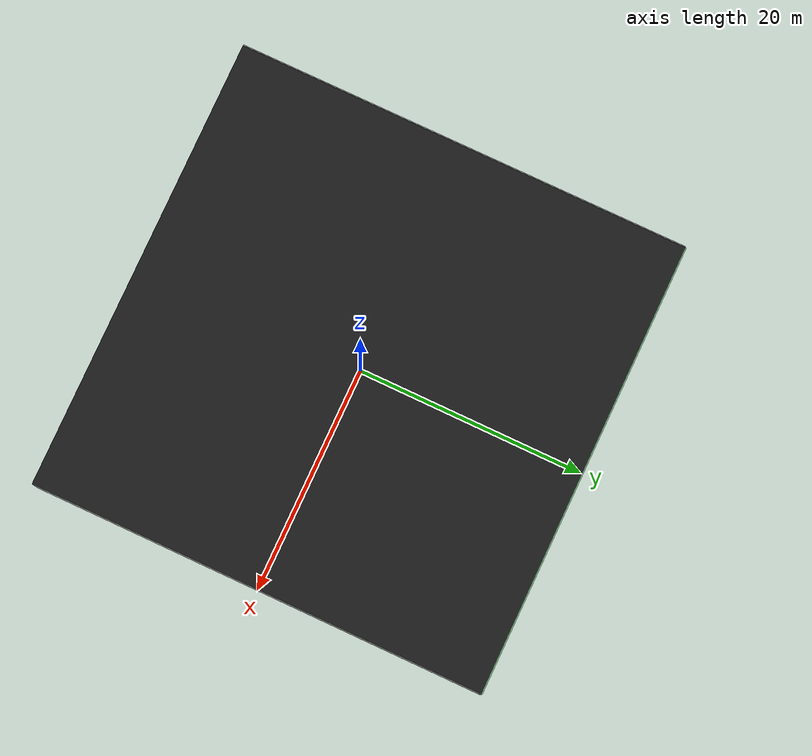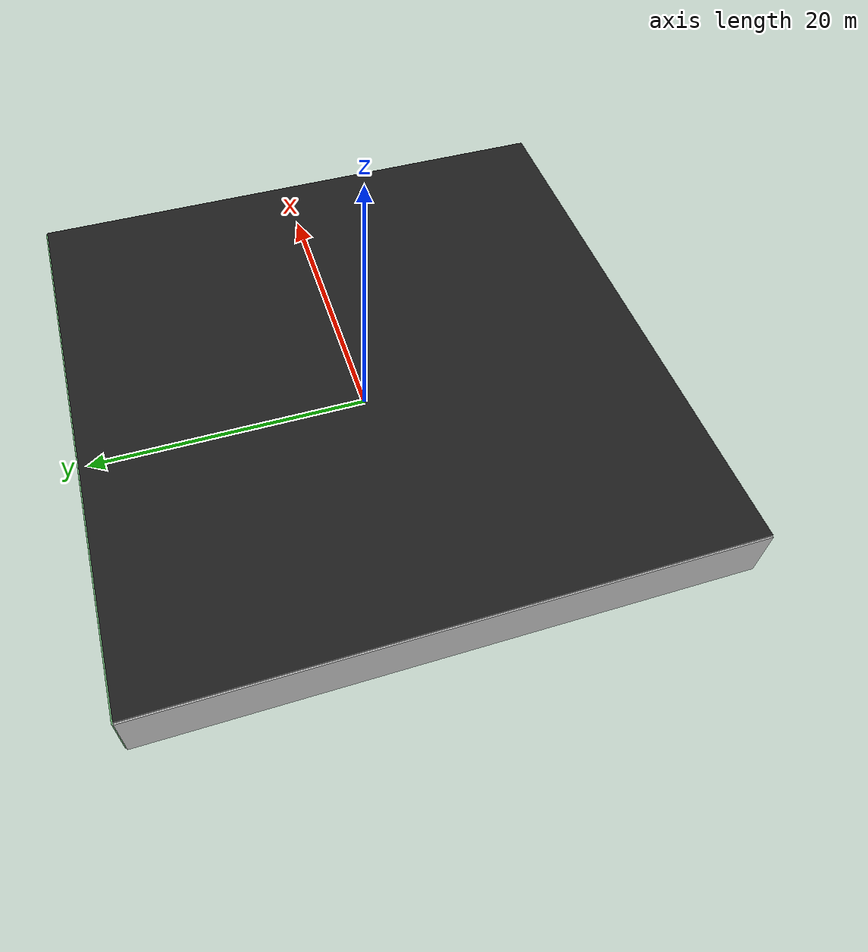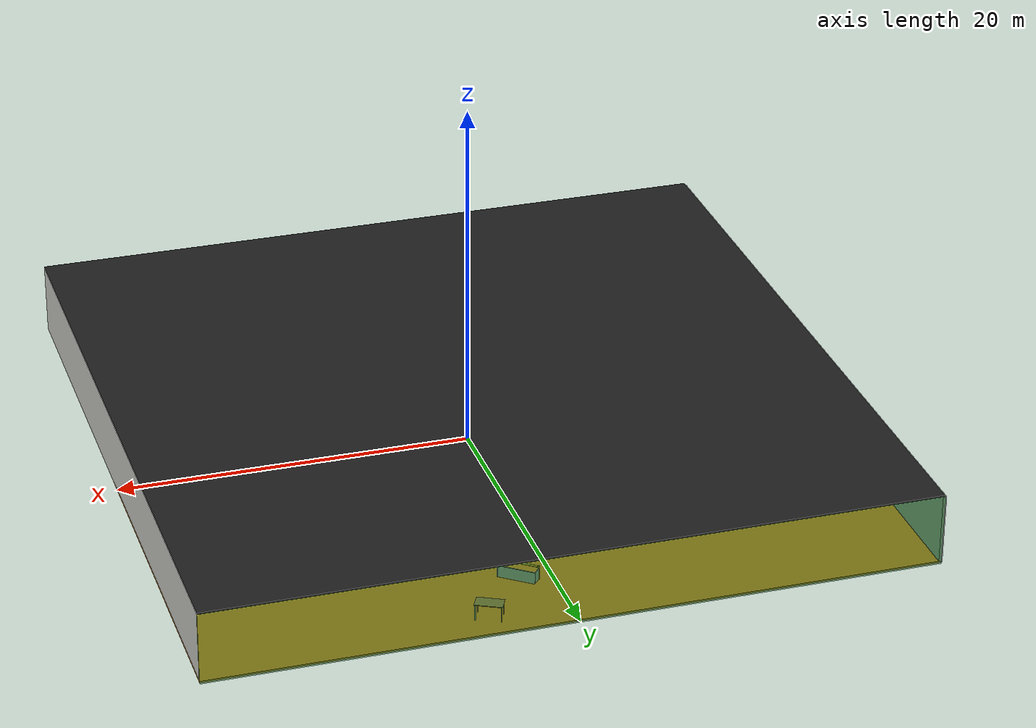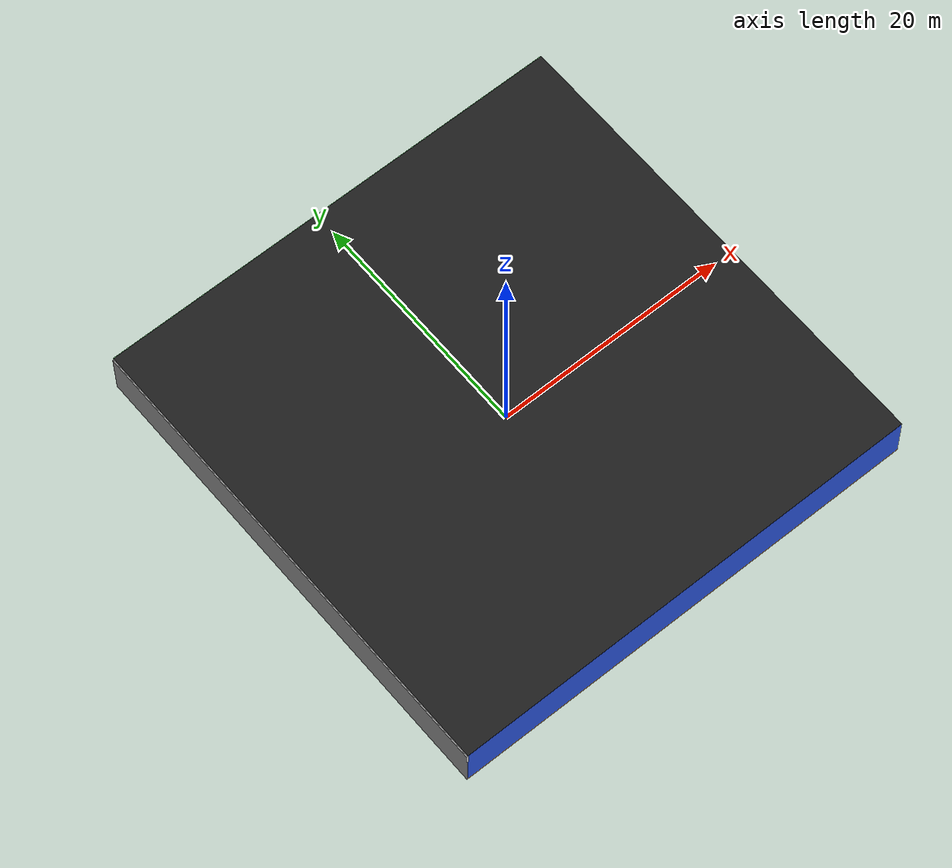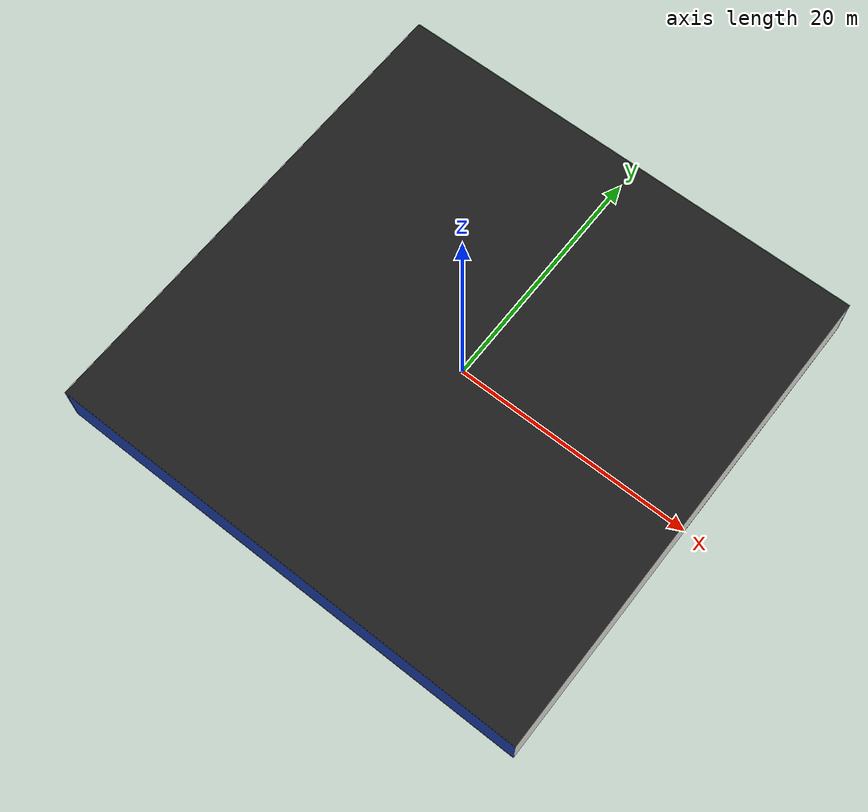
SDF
<sdf version="1.4">
 <world name="default">
  <physics type="ode">
   <max_step_size>0.001</max_step_size>
   <real_time_factor>1</real_time_factor>
   <real_time_update_rate>1000</real_time_update_rate>
   <gravity>0 0 -9.8</gravity>
  </physics>
  <scene><ambient>0.4 0.4 0.4 1</ambient><background>0.7 0.7 0.7 1</background><shadows>1</shadows></scene>
  <model name="Surrounding">
   <static>1</static>
   <link name="Ceiling">
    <collision name="Ceiling_Collision"><geometry><box><size>40 40 0.1</size></box></geometry></collision>
    <visual name="Ceiling_Visual">
     <geometry><box><size>40 40 0.1</size></box></geometry>
     <material>
      <script><uri>file://media/materials/scripts/gazebo.material</uri><name>Gazebo/FlatBlack</name></script>
     </material>
    </visual>
    <pose>0 0 4.05 0 0 0</pose>
   </link>
   <link name="Wall_South">
    <collision name="Wall_South_Collision">
     <geometry><box><size>40 0 4</size></box></geometry>
     <pose>0 0 2 0 -0 0</pose>
    </collision>
    <visual name="Wall_South_Visual">
     <pose>0 0 2 0 -0 0</pose>
     <geometry><box><size>40 0 4</size></box></geometry>
     <material>
      <script><uri>file://media/materials/scripts/gazebo.material</uri><name>Gazebo/BlueGlow</name></script>
     </material>
    </visual>
    <velocity_decay><linear>0</linear><angular>0</angular></velocity_decay>
    <pose>0 -20 0 0 -0 0</pose>
   </link>
   <link name="Wall_East">
    <collision name="Wall_21_Collision">
     <geometry><box><size>40 0 4</size></box></geometry>
     <pose>0 0 2 0 -0 0</pose>
    </collision>
    <visual name="Wall_21_Visual">
     <pose>0 0 2 0 -0 0</pose>
     <geometry><box><size>40 0 4</size></box></geometry>
     <material>
      <script><uri>file://media/materials/scripts/gazebo.material</uri><name>Gazebo/CeilingTiled</name></script>
     </material>
    </visual>
    <velocity_decay><linear>0</linear><angular>0</angular></velocity_decay>
    <pose>20 0 0 0 -0 1.5708</pose>
   </link>
   <link name="Wall_North">
    <collision name="Wall_22_Collision">
     <geometry><box><size>40 0.2 4</size></box></geometry>
     <pose>0 0 2 0 -0 0</pose>
    </collision>
    <visual name="Wall_22_Visual">
     <pose>0 0 2 0 -0 0</pose>
     <geometry><box><size>40 0.2 4</size></box></geometry>
     <material>
      <script><uri>file://media/materials/scripts/gazebo.material</uri><name>Gazebo/GreenTransparent</name></script>
     </material>
    </visual>
    <velocity_decay><linear>0</linear><angular>0</angular></velocity_decay>
    <pose>0 20 0 0 -0 0</pose>
   </link>
   <link name="Wall_West">
    <collision name="Wall_23_Collision">
     <geometry><box><size>40 0.2 4</size></box></geometry>
     <pose>0 0 2 0 -0 0</pose>
    </collision>
    <visual name="Wall_23_Visual">
     <pose>0 0 2 0 -0 0</pose>
     <geometry><box><size>40 0.2 4</size></box></geometry>
     <material>
      <script><uri>file://media/materials/scripts/gazebo.material</uri><name>Gazebo/LightOn</name></script>
     </material>
    </visual>
    <velocity_decay><linear>0</linear><angular>0</angular></velocity_decay>
    <pose>-20 0 0 0 0 -1.5708</pose>
   </link>
   <link name="Ground_link">
    <collision name="collision">
     <pose>0 0 .05 0 -0 0</pose>
     <geometry><box><size>40 40 0.1</size></box></geometry>
    </collision>
    <visual name="visual">
     <pose>0 0 .05 0 -0 0</pose>
     <geometry><box><size>40 40 0.1</size></box></geometry>
     <material>
      <script><uri>file://media/materials/scripts/gazebo.material</uri><name>Gazebo/Orange</name></script>
     </material>
    </visual>
   </link>
   <static>1</static>
  </model>
  <spherical_coordinates>
   <surface_model>EARTH_WGS84</surface_model>
   <latitude_deg>0</latitude_deg>
   <longitude_deg>0</longitude_deg>
   <elevation>0</elevation>
   <heading_deg>0</heading_deg>
  </spherical_coordinates>
  <light name="lightball_0" type="diffuse">
   <diffuse>0.8 0.8 0.8 1</diffuse>
   <specular>0.2 0.2 0.2 1</specular>
   <attenuation>
    <range>100</range>
    <constant>0.7</constant>
    <linear>0.01</linear>
    <quadratic>0.001</quadratic>
   </attenuation>
   <direction>-0.5 0.1 -0.9</direction>
   <pose>19.3155266148 -17.4149243465 0.855366695983 0 0 0</pose>
  </light>
  <light name="lightball_1" type="diffuse">
   <diffuse>0.8 0.8 0.8 1</diffuse>
   <specular>0.2 0.2 0.2 1</specular>
   <attenuation>
    <range>100</range>
    <constant>0.7</constant>
    <linear>0.01</linear>
    <quadratic>0.001</quadratic>
   </attenuation>
   <direction>-0.5 0.1 -0.9</direction>
   <pose>-10.9321540115 -7.29155529692 1.79032524655 0 0 0</pose>
  </light>
  <light name="lightball_2" type="diffuse">
   <diffuse>0.8 0.8 0.8 1</diffuse>
   <specular>0.2 0.2 0.2 1</specular>
   <attenuation>
    <range>100</range>
    <constant>0.7</constant>
    <linear>0.01</linear>
    <quadratic>0.001</quadratic>
   </attenuation>
   <direction>-0.5 0.1 -0.9</direction>
   <pose>8.80165905673 14.0028220269 3.584334493 0 0 0</pose>
  </light>
  <light name="lightball_3" type="diffuse">
   <diffuse>0.8 0.8 0.8 1</diffuse>
   <specular>0.2 0.2 0.2 1</specular>
   <attenuation>
    <range>100</range>
    <constant>0.7</constant>
    <linear>0.01</linear>
    <quadratic>0.001</quadratic>
   </attenuation>
   <direction>-0.5 0.1 -0.9</direction>
   <pose>17.400841165 -18.2111795602 2.93786059378 0 0 0</pose>
  </light>
  <light name="lightball_4" type="diffuse">
   <diffuse>0.8 0.8 0.8 1</diffuse>
   <specular>0.2 0.2 0.2 1</specular>
   <attenuation>
    <range>100</range>
    <constant>0.7</constant>
    <linear>0.01</linear>
    <quadratic>0.001</quadratic>
   </attenuation>
   <direction>-0.5 0.1 -0.9</direction>
   <pose>-3.99178307648 -1.83506929981 3.25627614206 0 0 0</pose>
  </light>
  <light name="lightball_5" type="diffuse">
   <diffuse>0.8 0.8 0.8 1</diffuse>
   <specular>0.2 0.2 0.2 1</specular>
   <attenuation>
    <range>100</range>
    <constant>0.7</constant>
    <linear>0.01</linear>
    <quadratic>0.001</quadratic>
   </attenuation>
   <direction>-0.5 0.1 -0.9</direction>
   <pose>17.7032334389 -10.1354317175 3.3972629297 0 0 0</pose>
  </light>
  <light name="lightball_6" type="diffuse">
   <diffuse>0.8 0.8 0.8 1</diffuse>
   <specular>0.2 0.2 0.2 1</specular>
   <attenuation>
    <range>100</range>
    <constant>0.7</constant>
    <linear>0.01</linear>
    <quadratic>0.001</quadratic>
   </attenuation>
   <direction>-0.5 0.1 -0.9</direction>
   <pose>6.84197991167 0.155674767274 2.51540376918 0 0 0</pose>
  </light>
  <light name="lightball_7" type="diffuse">
   <diffuse>0.8 0.8 0.8 1</diffuse>
   <specular>0.2 0.2 0.2 1</specular>
   <attenuation>
    <range>100</range>
    <constant>0.7</constant>
    <linear>0.01</linear>
    <quadratic>0.001</quadratic>
   </attenuation>
   <direction>-0.5 0.1 -0.9</direction>
   <pose>16.5174090144 16.7713780097 0.834989437273 0 0 0</pose>
  </light>
  <light name="lightball_8" type="diffuse">
   <diffuse>0.8 0.8 0.8 1</diffuse>
   <specular>0.2 0.2 0.2 1</specular>
   <attenuation>
    <range>100</range>
    <constant>0.7</constant>
    <linear>0.01</linear>
    <quadratic>0.001</quadratic>
   </attenuation>
   <direction>-0.5 0.1 -0.9</direction>
   <pose>-1.06432547051 5.95586174875 0.95583121833 0 0 0</pose>
  </light>
  <include><uri>model://cabinet</uri><pose>-17.3391257539 2.60163617876 0 0 0 1.03225240963</pose></include>
  <include><uri>model://cabinet</uri><pose>-13.8811598912 -8.52185043021 0 0 0 2.03861078258</pose></include>
  <include>
   <uri>model://construction_cone</uri>
   <pose>-13.3234423461 -3.10237472053 0 0 0 0.786363656975</pose>
  </include>
  <include>
   <uri>model://construction_cone</uri>
   <pose>-10.863917285 0.855305252747 0 0 0 0.76544969565</pose>
  </include>
  <include>
   <uri>model://robocup_3Dsim_goal</uri>
   <pose>-8.23177789316 -8.09710434329 0 0 0 1.68568240869</pose>
  </include>
  <include><uri>model://cabinet</uri><pose>-6.54268073906 -17.3082901691 0 0 0 0.896374633931</pose></include>
  <include><uri>model://table</uri><pose>-5.7442572228 12.8553671798 0 0 0 1.54188446085</pose></include>
  <include>
   <uri>model://construction_cone</uri>
   <pose>-1.40424006099 -4.50576519356 0 0 0 1.24911881729</pose>
  </include>
  <include><uri>model://table</uri><pose>-2.49361439214 -0.59944204196 0 0 0 2.21307785316</pose></include>
  <include>
   <uri>model://construction_cone</uri>
   <pose>1.50399440808 -18.5111435663 0 0 0 1.73850402467</pose>
  </include>
  <include><uri>model://cabinet</uri><pose>0.313968521739 -7.66802923178 0 0 0 2.04068707435</pose></include>
  <include><uri>model://cabinet</uri><pose>0.23016086141 2.34880302828 0 0 0 1.69021921529</pose></include>
  <include>
   <uri>model://textured_shapes</uri>
   <pose>1.236202951 11.4627437447 0 0 0 1.62949640922</pose>
  </include>
  <include>
   <uri>model://robocup_3Dsim_goal</uri>
   <pose>1.65939809849 14.9642917356 0 0 0 0.911316648984</pose>
  </include>
  <include><uri>model://cabinet</uri><pose>4.45490476452 -18.1658086659 0 0 0 3.07096482511</pose></include>
  <include><uri>model://table</uri><pose>4.40299956512 18.456789401 0 0 0 2.67920469275</pose></include>
  <include><uri>model://cabinet</uri><pose>5.92644947403 -2.68261261379 0 0 0 1.7463775979</pose></include>
  <include><uri>model://cabinet</uri><pose>6.28463652277 2.39596071396 0 0 0 0.0865902483898</pose></include>
  <include>
   <uri>model://robocup_3Dsim_goal</uri>
   <pose>10.2947513032 -11.3329038833 0 0 0 0.742007381498</pose>
  </include>
  <include><uri>model://cabinet</uri><pose>8.76766328298 -0.546907752156 0 0 0 2.0043854551</pose></include>
  <include>
   <uri>model://textured_shapes</uri>
   <pose>12.3485490167 9.10804119338 0 0 0 1.6495001745</pose>
  </include>
  <include>
   <uri>model://construction_cone</uri>
   <pose>14.6008877725 -17.0307542696 0 0 0 2.43380465624</pose>
  </include>
  <include><uri>model://cabinet</uri><pose>16.5821079972 1.25718124493 0 0 0 0.968314247589</pose></include>
 </world>
</sdf>

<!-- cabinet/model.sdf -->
<sdf version="1.5">
  <model name="cabinet">
    <static>true</static>
    <link name="cabinet_bottom_plate">
      <inertial>
        <pose>0 0 -1 0 0 0</pose>
        <inertia>
          <ixx>2.050000</ixx>
          <ixy>0</ixy>
          <ixz>0</ixz>
          <iyy>2.050000</iyy>
          <iyz>0</iyz>
          <izz>2.050000</izz>
        </inertia>
        <mass>25.000000</mass>
      </inertial>
      <collision name="cabinet_bottom_plate_geom">
        <pose>0 0 0.010000 0 0 0</pose>
        <geometry>
          <box>
            <size>0.450000 0.450000 0.020000</size>
          </box>
        </geometry>
      </collision>
      <visual name="cabinet_bottom_plate_geom_visual">
        <pose>0 0 0.010000 0 0 0</pose>
        <geometry>
          <box>
            <size>0.450000 0.450000 0.020000</size>
          </box>
        </geometry>
        <material>
          <script>
            <uri>model://media/materials/scripts/gazebo.material</uri>
            <name>Gazebo/Wood</name>
          </script>
        </material>
      </visual>
      <collision name="cabinet_bottom_plate_geom_cabinet_back_plate">
        <pose>0.235000 0 0.510000 0 0 0</pose>
        <geometry>
          <box>
            <size>0.020000 0.450000 1.020000</size>
          </box>
        </geometry>
      </collision>
      <visual name="cabinet_bottom_plate_geom_cabinet_back_plate_visual">
        <pose>0.235000 0 0.510000 0 0 0</pose>
        <geometry>
          <box>
            <size>0.020000 0.450000 1.020000</size>
          </box>
        </geometry>
        <material>
          <script>
            <uri>model://media/materials/scripts/gazebo.material</uri>
            <name>Gazebo/Wood</name>
          </script>
        </material>
      </visual>
      <collision name="cabinet_bottom_plate_geom_cabinet_left_plate">
        <pose>0 0.235000 0.510000 0 0 0</pose>
        <geometry>
          <box>
            <size>0.450000 0.020000 1.020000</size>
          </box>
        </geometry>
      </collision>
      <visual name="cabinet_bottom_plate_geom_cabinet_left_plate_visual">
        <pose>0 0.235000 0.510000 0 0 0</pose>
        <geometry>
          <box>
            <size>0.450000 0.020000 1.020000</size>
          </box>
        </geometry>
        <material>
          <script>
            <uri>model://media/materials/scripts/gazebo.material</uri>
            <name>Gazebo/Wood</name>
          </script>
        </material>
      </visual>
      <collision name="cabinet_bottom_plate_geom_cabinet_middle_plate">
        <pose>0 0 0.510000 0 0 0</pose>
        <geometry>
          <box>
            <size>0.450000 0.450000 0.020000</size>
          </box>
        </geometry>
      </collision>
      <visual name="cabinet_bottom_plate_geom_cabinet_middle_plate_visual">
        <pose>0 0 0.510000 0 0 0</pose>
        <geometry>
          <box>
            <size>0.450000 0.450000 0.020000</size>
          </box>
        </geometry>
        <material>
          <script>
            <uri>model://media/materials/scripts/gazebo.material</uri>
            <name>Gazebo/Wood</name>
          </script>
        </material>
      </visual>
      <collision name="cabinet_bottom_plate_geom_cabinet_right_plate">
        <pose>0 -0.235000 0.510000 0 0 0</pose>
        <geometry>
          <box>
            <size>0.450000 0.020000 1.020000</size>
          </box>
        </geometry>
      </collision>
      <visual name="cabinet_bottom_plate_geom_cabinet_right_plate_visual">
        <pose>0 -0.235000 0.510000 0 0 0</pose>
        <geometry>
          <box>
            <size>0.450000 0.020000 1.020000</size>
          </box>
        </geometry>
        <material>
          <script>
            <uri>model://media/materials/scripts/gazebo.material</uri>
            <name>Gazebo/Wood</name>
          </script>
        </material>
      </visual>
      <collision name="cabinet_bottom_plate_geom_cabinet_top_plate">
        <pose>0 0 1.010000 0 0 0</pose>
        <geometry>
          <box>
            <size>0.450000 0.450000 0.020000</size>
          </box>
        </geometry>
      </collision>
      <visual name="cabinet_bottom_plate_geom_cabinet_top_plate_visual">
        <pose>0 0 1.010000 0 0 0</pose>
        <geometry>
          <box>
            <size>0.450000 0.450000 0.020000</size>
          </box>
        </geometry>
        <material>
          <script>
            <uri>model://media/materials/scripts/gazebo.material</uri>
            <name>Gazebo/Wood</name>
          </script>
        </material>
      </visual>
    </link>
  </model>
</sdf>

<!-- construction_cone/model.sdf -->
<sdf version="1.5">
  <model name="Construction Cone">
    <link name="link">
      <collision name="collision">
        <geometry>
          <mesh>
            <scale>10 10 10</scale>
            <uri>file://isr-testbed/construction_cone/meshes/construction_cone.dae</uri>
          </mesh>
        </geometry>
      </collision>
      <visual name="visual">
        <geometry>
          <mesh>
            <scale>10 10 10</scale>
            <uri>file://isr-testbed/construction_cone/meshes/construction_cone.dae</uri>
          </mesh>
        </geometry>
      </visual>
    </link>
  </model>
</sdf>

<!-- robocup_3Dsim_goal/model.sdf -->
<sdf version="1.5">
  <model name="robocup_3d_goal">
    <static>true</static>
    <link name="left_post">
      <pose>0 1.05 0.45 0 0 0</pose>
      <collision name="collision">
        <geometry>
          <cylinder>
            <radius>0.05</radius>
            <length>0.9</length>
          </cylinder>
        </geometry>
      </collision>
      <visual name="visual">
        <geometry>
          <cylinder>
            <radius>0.05</radius>
            <length>0.9</length>
          </cylinder>
        </geometry>
        <material>
          <script>
            <uri>file://media/materials/scripts/gazebo.material</uri>
            <name>Gazebo/ZincYellow</name>
          </script>
        </material>
      </visual>
    </link>
    <link name="left_support_horiz_lower">
      <pose>0.30 1.05 0.01 0 0 0</pose>
      <collision name="collision">
        <geometry>
          <box>
            <size>0.50 0.02 0.02</size>
          </box>
        </geometry>
      </collision>
      <visual name="visual">
        <geometry>
          <box>
            <size>0.50 0.02 0.02</size>
          </box>
        </geometry>
        <material>
          <script>
            <uri>file://media/materials/scripts/gazebo.material</uri>
            <name>Gazebo/White</name>
          </script>
        </material>
      </visual>
    </link>
    <link name="left_support_horiz_upper">
      <pose>0.30 1.05 0.79 0 0 0</pose>
      <collision name="collision">
        <geometry>
          <box>
            <size>0.50 0.02 0.02</size>
          </box>
        </geometry>
      </collision>
      <visual name="visual">
        <geometry>
          <box>
            <size>0.50 0.02 0.02</size>
          </box>
        </geometry>
        <material>
          <script>
            <uri>file://media/materials/scripts/gazebo.material</uri>
            <name>Gazebo/White</name>
          </script>
        </material>
      </visual>
    </link>
    <link name="left_support_vertical">
      <pose>0.56 1.05 0.4 0 1.5708 0</pose>
      <collision name="collision">
        <geometry>
          <box>
            <size>0.80 0.02 0.02</size>
          </box>
        </geometry>
      </collision>
      <visual name="visual">
        <geometry>
          <box>
            <size>0.80 0.02 0.02</size>
          </box>
        </geometry>
        <material>
          <script>
            <uri>file://media/materials/scripts/gazebo.material</uri>
            <name>Gazebo/White</name>
          </script>
        </material>
      </visual>
    </link>
    <link name="right_support_horiz_lower">
      <pose>0.30 -1.05 0.01 0 0 0</pose>
      <collision name="collision">
        <geometry>
          <box>
            <size>0.50 0.02 0.02</size>
          </box>
        </geometry>
      </collision>
      <visual name="visual">
        <geometry>
          <box>
            <size>0.50 0.02 0.02</size>
          </box>
        </geometry>
        <material>
          <script>
            <uri>file://media/materials/scripts/gazebo.material</uri>
            <name>Gazebo/White</name>
          </script>
        </material>
      </visual>
    </link>
    <link name="right_support_horiz_upper">
      <pose>0.30 -1.05 0.79 0 0 0</pose>
      <collision name="collision">
        <geometry>
          <box>
            <size>0.50 0.02 0.02</size>
          </box>
        </geometry>
      </collision>
      <visual name="visual">
        <geometry>
          <box>
            <size>0.50 0.02 0.02</size>
          </box>
        </geometry>
        <material>
          <script>
            <uri>file://media/materials/scripts/gazebo.material</uri>
            <name>Gazebo/White</name>
          </script>
        </material>
      </visual>
    </link>
    <link name="right_support_vertical">
      <pose>0.56 -1.05 0.4 0 1.5708 0</pose>
      <collision name="collision">
        <geometry>
          <box>
            <size>0.80 0.02 0.02</size>
          </box>
        </geometry>
      </collision>
      <visual name="visual">
        <geometry>
          <box>
            <size>0.80 0.02 0.02</size>
          </box>
        </geometry>
        <material>
          <script>
            <uri>file://media/materials/scripts/gazebo.material</uri>
            <name>Gazebo/White</name>
          </script>
        </material>
      </visual>
    </link>
    <link name="center_support_horiz_lower">
      <pose>0.56 0 0.01 0 1.5708 0</pose>
      <collision name="collision">
        <geometry>
          <box>
            <size>0.02 2.08 0.02</size>
          </box>
        </geometry>
      </collision>
      <visual name="visual">
        <geometry>
          <box>
            <size>0.02 2.08 0.02</size>
          </box>
        </geometry>
        <material>
          <script>
            <uri>file://media/materials/scripts/gazebo.material</uri>
            <name>Gazebo/White</name>
          </script>
        </material>
      </visual>
    </link>
    <link name="center_support_horiz_upper">
      <pose>0.56 0 0.79 0 1.5708 0</pose>
      <collision name="collision">
        <geometry>
          <box>
            <size>0.02 2.08 0.02</size>
          </box>
        </geometry>
      </collision>
      <visual name="visual">
        <geometry>
          <box>
            <size>0.02 2.08 0.02</size>
          </box>
        </geometry>
        <material>
          <script>
            <uri>file://media/materials/scripts/gazebo.material</uri>
            <name>Gazebo/White</name>
          </script>
        </material>
      </visual>
    </link>
    <link name="right_post">
      <pose>0 -1.05 0.45 0 0 0</pose>
      <collision name="collision">
        <geometry>
          <cylinder>
            <radius>0.05</radius>
            <length>0.9</length>
          </cylinder>
        </geometry>
      </collision>
      <visual name="visual">
        <geometry>
          <cylinder>
            <radius>0.05</radius>
            <length>0.9</length>
          </cylinder>
        </geometry>
        <material>
          <script>
            <uri>file://media/materials/scripts/gazebo.material</uri>
            <name>Gazebo/ZincYellow</name>
          </script>
        </material>
      </visual>
    </link>
    <link name="crossbar">
      <pose>0 0 0.85 1.57 1.57 0</pose>
      <collision name="collision">
        <geometry>
          <cylinder>
            <radius>0.05</radius>
            <length>2.0</length>
          </cylinder>
        </geometry>
      </collision>
      <visual name="visual">
        <geometry>
          <cylinder>
            <radius>0.05</radius>
            <length>2.0</length>
          </cylinder>
        </geometry>
        <material>
          <script>
            <uri>file://media/materials/scripts/gazebo.material</uri>
            <name>Gazebo/ZincYellow</name>
          </script>
        </material>
      </visual>
    </link>
    <link name="center_net">
      <pose>0.56 0 0.40 0 0 0</pose>
      <collision name="collision">
        <geometry>
          <box>
            <size>0.01 2.1 0.80</size>
          </box>
        </geometry>
      </collision>
      <visual name="visual">
        <geometry>
          <box>
            <size>0.01 2.1 0.80</size>
          </box>
        </geometry>
        <material>
          <script>
            <uri>model://../model_source/models/robocup09_spl_field/materials/scripts/</uri>
            <uri>model://../model_source/models/robocup09_spl_field/materials/textures/</uri>
            <name>RoboCup/Net</name>
          </script>
        </material>
      </visual>
    </link>
    <link name="left_net">
      <pose>0.30 1.05 0.40 0 0 0</pose>
      <collision name="collision">
        <geometry>
          <box>
            <size>0.50 0.01 0.76</size>
          </box>
        </geometry>
      </collision>
      <visual name="visual">
        <geometry>
          <box>
            <size>0.50 0.01 0.76</size>
          </box>
        </geometry>
        <material>
          <script>
            <uri>model://../model_source/models/robocup09_spl_field/materials/scripts/</uri>
            <uri>model://../model_source/models/robocup09_spl_field/materials/textures/</uri>
            <name>RoboCup/Net</name>
          </script>
        </material>
      </visual>
    </link>
    <link name="right_net">
      <pose>0.30 -1.05 0.40 0 0 0</pose>
      <collision name="collision">
        <geometry>
          <box>
            <size>0.50 0.01 0.76</size>
          </box>
        </geometry>
      </collision>
      <visual name="visual">
        <geometry>
          <box>
            <size>0.50 0.01 0.76</size>
          </box>
        </geometry>
        <material>
          <script>
            <uri>model://../model_source/models/robocup09_spl_field/materials/scripts/</uri>
            <uri>model://../model_source/models/robocup09_spl_field/materials/textures/</uri>
            <name>RoboCup/Net</name>
          </script>
        </material>
      </visual>
    </link>
  </model>
</sdf>

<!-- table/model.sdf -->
<sdf version="1.5">
  <model name="table">
    <static>true</static>
    <link name="link">
      <collision name="surface">
        <pose>0 0 1.0 0 0 0</pose>
        <geometry>
          <box>
            <size>1.5 0.8 0.03</size>
          </box>
        </geometry>
        <surface>
          <friction>
            <ode>
              <mu>0.6</mu>
              <mu2>0.6</mu2>
            </ode>
          </friction>
        </surface>
      </collision>
      <visual name="visual1">
        <pose>0 0 1.0 0 0 0</pose>
        <geometry>
          <box>
            <size>1.5 0.8 0.03</size>
          </box>
        </geometry>
        <material>
          <script>
            <uri>model://media/materials/scripts/gazebo.material</uri>
            <name>Gazebo/Wood</name>
          </script>
        </material>
      </visual>
      <collision name="front_left_leg">
        <pose>0.68 0.38 0.5 0 0 0</pose>
        <geometry>
          <cylinder>
            <radius>0.02</radius>
            <length>1.0</length>
          </cylinder>
        </geometry>
      </collision>
      <visual name="front_left_leg">
        <pose>0.68 0.38 0.5 0 0 0</pose>
        <geometry>
          <cylinder>
            <radius>0.02</radius>
            <length>1.0</length>
          </cylinder>
        </geometry>
        <material>
          <script>
            <uri>model://media/materials/scripts/gazebo.material</uri>
            <name>Gazebo/Grey</name>
          </script>
        </material>
      </visual>
      <collision name="front_right_leg">
        <pose>0.68 -0.38 0.5 0 0 0</pose>
        <geometry>
          <cylinder>
            <radius>0.02</radius>
            <length>1.0</length>
          </cylinder>
        </geometry>
      </collision>
      <visual name="front_right_leg">
        <pose>0.68 -0.38 0.5 0 0 0</pose>
        <geometry>
          <cylinder>
            <radius>0.02</radius>
            <length>1.0</length>
          </cylinder>
        </geometry>
        <material>
          <script>
            <uri>model://media/materials/scripts/gazebo.material</uri>
            <name>Gazebo/Grey</name>
          </script>
        </material>
      </visual>
      <collision name="back_right_leg">
        <pose>-0.68 -0.38 0.5 0 0 0</pose>
        <geometry>
          <cylinder>
            <radius>0.02</radius>
            <length>1.0</length>
          </cylinder>
        </geometry>
      </collision>
      <visual name="back_right_leg">
        <pose>-0.68 -0.38 0.5 0 0 0</pose>
        <geometry>
          <cylinder>
            <radius>0.02</radius>
            <length>1.0</length>
          </cylinder>
        </geometry>
        <material>
          <script>
            <uri>model://media/materials/scripts/gazebo.material</uri>
            <name>Gazebo/Grey</name>
          </script>
        </material>
      </visual>
      <collision name="back_left_leg">
        <pose>-0.68 0.38 0.5 0 0 0</pose>
        <geometry>
          <cylinder>
            <radius>0.02</radius>
            <length>1.0</length>
          </cylinder>
        </geometry>
      </collision>
      <visual name="back_left_leg">
        <pose>-0.68 0.38 0.5 0 0 0</pose>
        <geometry>
          <cylinder>
            <radius>0.02</radius>
            <length>1.0</length>
          </cylinder>
        </geometry>
        <material>
          <script>
            <uri>model://media/materials/scripts/gazebo.material</uri>
            <name>Gazebo/Grey</name>
          </script>
        </material>
      </visual>
    </link>
  </model>
</sdf>

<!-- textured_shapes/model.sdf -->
<sdf version="1.6">
  <model name="textured_shapes">
    <pose>0 0 0.5 0 0 0</pose>
    <link name="box">
      <pose>0 -1.5 0 0 0 0</pose>
      <collision name="collision">
        <geometry>
          <box>
            <size>1 1 1</size>
          </box>
        </geometry>
      </collision>
      <visual name="visual">
        <geometry>
          <box>
            <size>1 1 1</size>
          </box>
        </geometry>
        <material>
          <script>
            <uri>model://../model_source/models/textured_shapes/materials/scripts</uri>
            <uri>model://../model_source/models/textured_shapes/materials/textures</uri>
            <name>TexturedShape/Squares</name>
          </script>
        </material>
      </visual>
    </link>
    <link name="sphere">
      <collision name="collision">
        <geometry>
          <sphere>
            <radius>0.5</radius>
          </sphere>
        </geometry>
      </collision>
      <visual name="visual">
        <geometry>
          <sphere>
            <radius>0.5</radius>
          </sphere>
        </geometry>
        <material>
          <script>
            <uri>model://../model_source/models/textured_shapes/materials/scripts</uri>
            <uri>model://../model_source/models/textured_shapes/materials/textures</uri>
            <name>TexturedShape/Squares</name>
          </script>
        </material>
      </visual>
    </link>
    <link name="cylinder">
      <pose>0 1.5 0 0 0 0</pose>
      <collision name="collision">
        <geometry>
          <cylinder>
            <radius>0.5</radius>
            <length>1</length>
          </cylinder>
        </geometry>
      </collision>
      <visual name="visual">
        <geometry>
          <cylinder>
            <radius>0.5</radius>
            <length>1</length>
          </cylinder>
        </geometry>
        <material>
          <script>
            <uri>model://../model_source/models/textured_shapes/materials/scripts</uri>
            <uri>model://../model_source/models/textured_shapes/materials/textures</uri>
            <name>TexturedShape/Squares</name>
          </script>
        </material>
      </visual>
    </link>
  </model>
</sdf>
